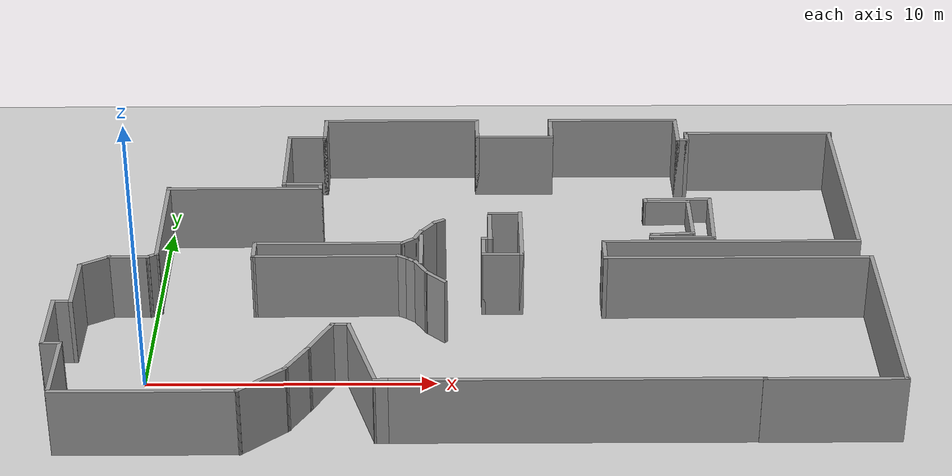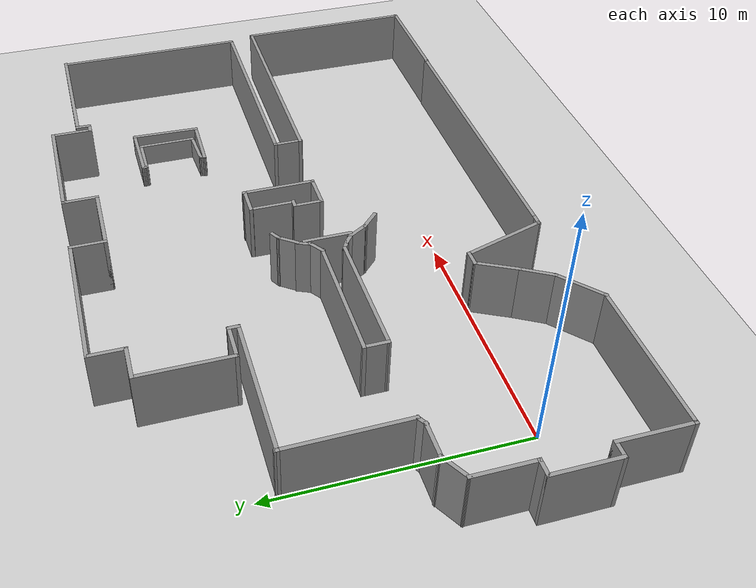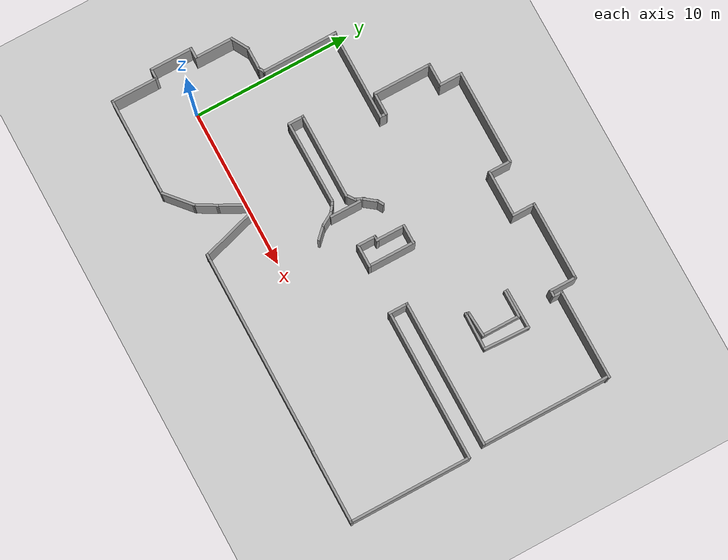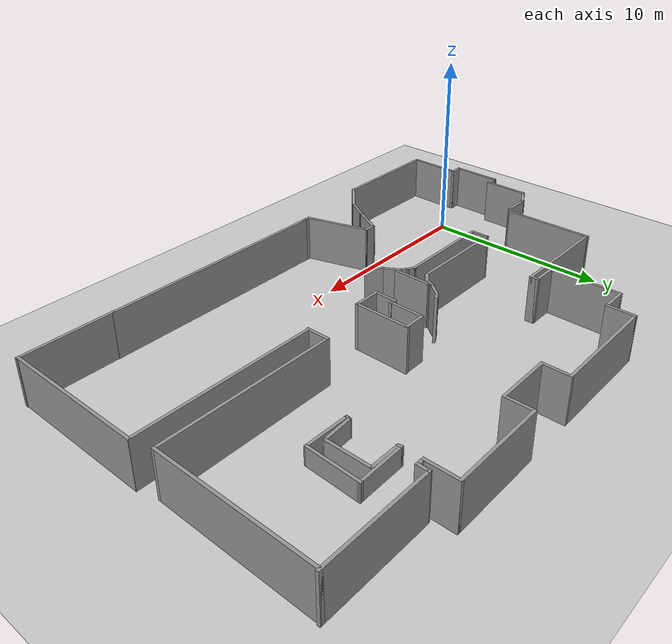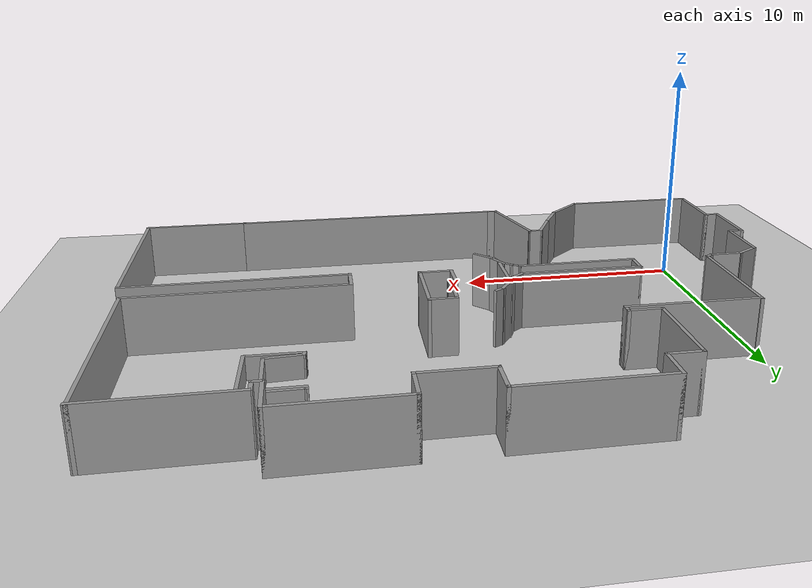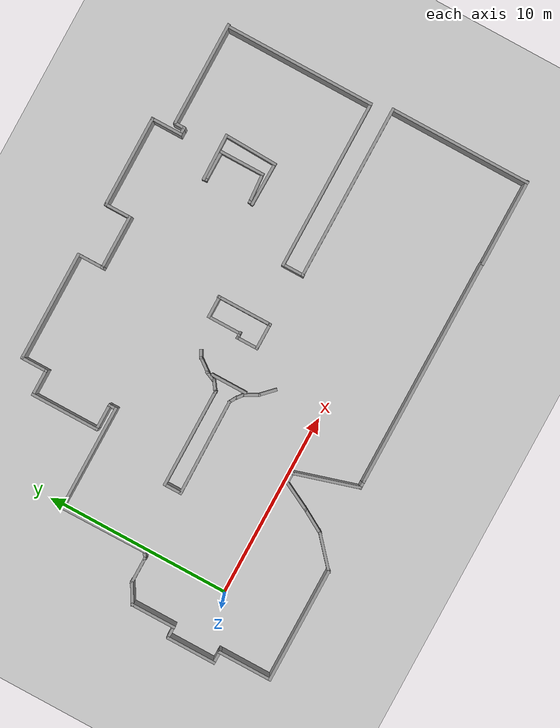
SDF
<sdf version="1.6">
 <world name="default">
  <model name="ground_plane">
   <static>1</static>
   <link name="link">
    <collision name="collision">
     <geometry><plane><normal>0 0 1</normal><size>100 100</size></plane></geometry>
     <surface>
      <contact><collide_bitmask>65535</collide_bitmask></contact>
      <friction><ode><mu>2e+06</mu><mu2>2e+06</mu2></ode></friction>
     </surface>
    </collision>
    <visual name="visual">
     <cast_shadows>0</cast_shadows>
     <geometry><plane><normal>0 0 1</normal><size>100 100</size></plane></geometry>
     <material>
      <script><uri>file://media/materials/scripts/gazebo.material</uri><name>Gazebo/Grey</name></script>
     </material>
    </visual>
   </link>
  </model>
  <light name="sun" type="directional">
   <pose>0 0 10 0 -0 0</pose>
   <diffuse>0.8 0.8 0.8 1</diffuse>
   <specular>0.2 0.2 0.2 1</specular>
   <attenuation>
    <range>1000</range>
    <constant>0.9</constant>
    <linear>0.01</linear>
    <quadratic>0.001</quadratic>
   </attenuation>
   <direction>-0.5 0.1 -0.9</direction>
  </light>
  <gravity>0 0 -9.8</gravity>
  <magnetic_field>6e-06 2.3e-05 -4.2e-05</magnetic_field>
  <atmosphere type="adiabatic"/>
  <physics name="default_physics" default="0" type="ode">
   <max_step_size>0.004</max_step_size>
   <real_time_factor>1</real_time_factor>
   <real_time_update_rate>250</real_time_update_rate>
  </physics>
  <scene><ambient>0.4 0.4 0.4 1</ambient><background>0.7 0.7 0.7 1</background><shadows>1</shadows></scene>
  <audio><device>default</device></audio>
  <spherical_coordinates>
   <surface_model>EARTH_WGS84</surface_model>
   <latitude_deg>0</latitude_deg>
   <longitude_deg>0</longitude_deg>
   <elevation>0</elevation>
   <heading_deg>0</heading_deg>
  </spherical_coordinates>
  <model name="showroomwall">
   <pose>11.0993 5.21478 0 0 -0 0</pose>
   <link name="Wall_0">
    <collision name="Wall_0_Collision">
     <geometry><box><size>6.25 0.15 2.5</size></box></geometry>
     <pose>0 0 1.25 0 -0 0</pose>
    </collision>
    <visual name="Wall_0_Visual">
     <pose>0 0 1.25 0 -0 0</pose>
     <geometry><box><size>6.25 0.15 2.5</size></box></geometry>
     <material>
      <script><uri>file://media/materials/scripts/gazebo.material</uri><name>Gazebo/Grey</name></script>
      <ambient>1 1 1 1</ambient>
     </material>
     <meta><layer>0</layer></meta>
    </visual>
    <pose>-10.5893 -9.22478 0 0 -0 0</pose>
   </link>
   <link name="Wall_1">
    <collision name="Wall_1_Collision">
     <geometry><box><size>2.12368 0.15 2.5</size></box></geometry>
     <pose>0 0 1.25 0 -0 0</pose>
    </collision>
    <visual name="Wall_1_Visual">
     <pose>0 0 1.25 0 -0 0</pose>
     <geometry><box><size>2.12368 0.15 2.5</size></box></geometry>
     <material>
      <script><uri>file://media/materials/scripts/gazebo.material</uri><name>Gazebo/Grey</name></script>
      <ambient>1 1 1 1</ambient>
     </material>
     <meta><layer>0</layer></meta>
    </visual>
    <pose>-6.79784 -8.58356 0 0 -0 0.720692</pose>
   </link>
   <link name="Wall_10">
    <collision name="Wall_10_Collision">
     <geometry><box><size>3 0.15 2.5</size></box></geometry>
     <pose>0 0 1.25 0 -0 0</pose>
    </collision>
    <visual name="Wall_10_Visual">
     <pose>0 0 1.25 0 -0 0</pose>
     <geometry><box><size>3 0.15 2.5</size></box></geometry>
     <material>
      <script><uri>file://media/materials/scripts/gazebo.material</uri><name>Gazebo/Grey</name></script>
      <ambient>1 1 1 1</ambient>
     </material>
     <meta><layer>0</layer></meta>
    </visual>
    <pose>-13.6393 -7.79978 0 0 -0 1.5708</pose>
   </link>
   <link name="Wall_11">
    <collision name="Wall_11_Collision">
     <geometry><box><size>0.75 0.15 2.5</size></box></geometry>
     <pose>0 0 1.25 0 -0 0</pose>
    </collision>
    <visual name="Wall_11_Visual">
     <pose>0 0 1.25 0 -0 0</pose>
     <geometry><box><size>0.75 0.15 2.5</size></box></geometry>
     <material>
      <script><uri>file://media/materials/scripts/gazebo.material</uri><name>Gazebo/Grey</name></script>
      <ambient>1 1 1 1</ambient>
     </material>
     <meta><layer>0</layer></meta>
    </visual>
    <pose>-13.9393 -6.37478 0 0 -0 3.14159</pose>
   </link>
   <link name="Wall_12">
    <collision name="Wall_12_Collision">
     <geometry><box><size>2.75 0.15 2.5</size></box></geometry>
     <pose>0 0 1.25 0 -0 0</pose>
    </collision>
    <visual name="Wall_12_Visual">
     <pose>0 0 1.25 0 -0 0</pose>
     <geometry><box><size>2.75 0.15 2.5</size></box></geometry>
     <material>
      <script><uri>file://media/materials/scripts/gazebo.material</uri><name>Gazebo/Grey</name></script>
      <ambient>1 1 1 1</ambient>
     </material>
     <meta><layer>0</layer></meta>
    </visual>
    <pose>-14.2393 -5.07478 0 0 -0 1.5708</pose>
   </link>
   <link name="Wall_14">
    <collision name="Wall_14_Collision">
     <geometry><box><size>0.75 0.15 2.5</size></box></geometry>
     <pose>0 0 1.25 0 -0 0</pose>
    </collision>
    <visual name="Wall_14_Visual">
     <pose>0 0 1.25 0 -0 0</pose>
     <geometry><box><size>0.75 0.15 2.5</size></box></geometry>
     <material>
      <script><uri>file://media/materials/scripts/gazebo.material</uri><name>Gazebo/Grey</name></script>
      <ambient>1 1 1 1</ambient>
     </material>
     <meta><layer>0</layer></meta>
    </visual>
    <pose>-13.9393 -3.77478 0 0 -0 0</pose>
   </link>
   <link name="Wall_15">
    <collision name="Wall_15_Collision">
     <geometry><box><size>2.5 0.15 2.5</size></box></geometry>
     <pose>0 0 1.25 0 -0 0</pose>
    </collision>
    <visual name="Wall_15_Visual">
     <pose>0 0 1.25 0 -0 0</pose>
     <geometry><box><size>2.5 0.15 2.5</size></box></geometry>
     <material>
      <script><uri>file://media/materials/scripts/gazebo.material</uri><name>Gazebo/Grey</name></script>
      <ambient>1 1 1 1</ambient>
     </material>
     <meta><layer>0</layer></meta>
    </visual>
    <pose>-13.6393 -2.59978 0 0 -0 1.5708</pose>
   </link>
   <link name="Wall_16">
    <collision name="Wall_16_Collision">
     <geometry><box><size>1.25 0.15 2.5</size></box></geometry>
     <pose>0 0 1.25 0 -0 0</pose>
    </collision>
    <visual name="Wall_16_Visual">
     <pose>0 0 1.25 0 -0 0</pose>
     <geometry><box><size>1.25 0.15 2.5</size></box></geometry>
     <material>
      <script><uri>file://media/materials/scripts/gazebo.material</uri><name>Gazebo/Grey</name></script>
      <ambient>1 1 1 1</ambient>
     </material>
     <meta><layer>0</layer></meta>
    </visual>
    <pose>-13.163 -1.14978 0 0 -0 0.523599</pose>
   </link>
   <link name="Wall_17">
    <collision name="Wall_17_Collision">
     <geometry><box><size>1.5 0.15 2.5</size></box></geometry>
     <pose>0 0 1.25 0 -0 0</pose>
    </collision>
    <visual name="Wall_17_Visual">
     <pose>0 0 1.25 0 -0 0</pose>
     <geometry><box><size>1.5 0.15 2.5</size></box></geometry>
     <material>
      <script><uri>file://media/materials/scripts/gazebo.material</uri><name>Gazebo/Grey</name></script>
      <ambient>1 1 1 1</ambient>
     </material>
     <meta><layer>0</layer></meta>
    </visual>
    <pose>-12.0117 -0.874777 0 0 -0 0</pose>
   </link>
   <link name="Wall_19">
    <collision name="Wall_19_Collision">
     <geometry><box><size>0.5 0.15 2.5</size></box></geometry>
     <pose>0 0 1.25 0 -0 0</pose>
    </collision>
    <visual name="Wall_19_Visual">
     <pose>0 0 1.25 0 -0 0</pose>
     <geometry><box><size>0.5 0.15 2.5</size></box></geometry>
     <material>
      <script><uri>file://media/materials/scripts/gazebo.material</uri><name>Gazebo/Grey</name></script>
      <ambient>1 1 1 1</ambient>
     </material>
     <meta><layer>0</layer></meta>
    </visual>
    <pose>-11.1851 -0.787278 0 0 -0 0.523599</pose>
   </link>
   <link name="Wall_2">
    <collision name="Wall_2_Collision">
     <geometry><box><size>1.5 0.15 2.5</size></box></geometry>
     <pose>0 0 1.25 0 -0 0</pose>
    </collision>
    <visual name="Wall_2_Visual">
     <pose>0 0 1.25 0 -0 0</pose>
     <geometry><box><size>1.5 0.15 2.5</size></box></geometry>
     <material>
      <script><uri>file://media/materials/scripts/gazebo.material</uri><name>Gazebo/Grey</name></script>
      <ambient>1 1 1 1</ambient>
     </material>
     <meta><layer>0</layer></meta>
    </visual>
    <pose>-5.71887 -7.34777 0 0 -0 1.0472</pose>
   </link>
   <link name="Wall_20">
    <collision name="Wall_20_Collision">
     <geometry><box><size>4.85603 0.15 2.5</size></box></geometry>
     <pose>0 0 1.25 0 -0 0</pose>
    </collision>
    <visual name="Wall_20_Visual">
     <pose>0 0 1.25 0 -0 0</pose>
     <geometry><box><size>4.85603 0.15 2.5</size></box></geometry>
     <material>
      <script><uri>file://media/materials/scripts/gazebo.material</uri><name>Gazebo/Grey</name></script>
      <ambient>1 1 1 1</ambient>
     </material>
     <meta><layer>0</layer></meta>
    </visual>
    <pose>-11.0538 1.65315 0 0 -0 1.57939</pose>
   </link>
   <link name="Wall_21">
    <collision name="Wall_21_Collision">
     <geometry><box><size>5.75 0.15 2.5</size></box></geometry>
     <pose>0 0 1.25 0 -0 0</pose>
    </collision>
    <visual name="Wall_21_Visual">
     <pose>0 0 1.25 0 -0 0</pose>
     <geometry><box><size>5.75 0.15 2.5</size></box></geometry>
     <material>
      <script><uri>file://media/materials/scripts/gazebo.material</uri><name>Gazebo/Grey</name></script>
      <ambient>1 1 1 1</ambient>
     </material>
     <meta><layer>0</layer></meta>
    </visual>
    <pose>-8.27402 3.96562 0 0 -0 0</pose>
   </link>
   <link name="Wall_23">
    <collision name="Wall_23_Collision">
     <geometry><box><size>0.5 0.15 2.5</size></box></geometry>
     <pose>0 0 1.25 0 -0 0</pose>
    </collision>
    <visual name="Wall_23_Visual">
     <pose>0 0 1.25 0 -0 0</pose>
     <geometry><box><size>0.5 0.15 2.5</size></box></geometry>
     <material>
      <script><uri>file://media/materials/scripts/gazebo.material</uri><name>Gazebo/Grey</name></script>
      <ambient>1 1 1 1</ambient>
     </material>
     <meta><layer>0</layer></meta>
    </visual>
    <pose>-5.47402 4.14062 0 0 -0 1.5708</pose>
   </link>
   <link name="Wall_24">
    <collision name="Wall_24_Collision">
     <geometry><box><size>1.5 0.15 2.5</size></box></geometry>
     <pose>0 0 1.25 0 -0 0</pose>
    </collision>
    <visual name="Wall_24_Visual">
     <pose>0 0 1.25 0 -0 0</pose>
     <geometry><box><size>1.5 0.15 2.5</size></box></geometry>
     <material>
      <script><uri>file://media/materials/scripts/gazebo.material</uri><name>Gazebo/Grey</name></script>
      <ambient>1 1 1 1</ambient>
     </material>
     <meta><layer>0</layer></meta>
    </visual>
    <pose>-6.14902 4.31562 0 0 -0 3.14159</pose>
   </link>
   <link name="Wall_25">
    <collision name="Wall_25_Collision">
     <geometry><box><size>3.75 0.15 2.5</size></box></geometry>
     <pose>0 0 1.25 0 -0 0</pose>
    </collision>
    <visual name="Wall_25_Visual">
     <pose>0 0 1.25 0 -0 0</pose>
     <geometry><box><size>3.75 0.15 2.5</size></box></geometry>
     <material>
      <script><uri>file://media/materials/scripts/gazebo.material</uri><name>Gazebo/Grey</name></script>
      <ambient>1 1 1 1</ambient>
     </material>
     <meta><layer>0</layer></meta>
    </visual>
    <pose>-6.82402 6.11562 0 0 -0 1.5708</pose>
   </link>
   <link name="Wall_26">
    <collision name="Wall_26_Collision">
     <geometry><box><size>1.5 0.15 2.5</size></box></geometry>
     <pose>0 0 1.25 0 -0 0</pose>
    </collision>
    <visual name="Wall_26_Visual">
     <pose>0 0 1.25 0 -0 0</pose>
     <geometry><box><size>1.5 0.15 2.5</size></box></geometry>
     <material>
      <script><uri>file://media/materials/scripts/gazebo.material</uri><name>Gazebo/Grey</name></script>
      <ambient>1 1 1 1</ambient>
     </material>
     <meta><layer>0</layer></meta>
    </visual>
    <pose>-6.14902 7.91562 0 0 -0 0</pose>
   </link>
   <link name="Wall_28">
    <collision name="Wall_28_Collision">
     <geometry><box><size>1.5 0.15 2.5</size></box></geometry>
     <pose>0 0 1.25 0 -0 0</pose>
    </collision>
    <visual name="Wall_28_Visual">
     <pose>0 0 1.25 0 -0 0</pose>
     <geometry><box><size>1.5 0.15 2.5</size></box></geometry>
     <material>
      <script><uri>file://media/materials/scripts/gazebo.material</uri><name>Gazebo/Grey</name></script>
      <ambient>1 1 1 1</ambient>
     </material>
     <meta><layer>0</layer></meta>
    </visual>
    <pose>-5.47402 8.59062 0 0 -0 1.5708</pose>
   </link>
   <link name="Wall_29">
    <collision name="Wall_29_Collision">
     <geometry><box><size>6 0.15 2.5</size></box></geometry>
     <pose>0 0 1.25 0 -0 0</pose>
    </collision>
    <visual name="Wall_29_Visual">
     <pose>0 0 1.25 0 -0 0</pose>
     <geometry><box><size>6 0.15 2.5</size></box></geometry>
     <material>
      <script><uri>file://media/materials/scripts/gazebo.material</uri><name>Gazebo/Grey</name></script>
      <ambient>1 1 1 1</ambient>
     </material>
     <meta><layer>0</layer></meta>
    </visual>
    <pose>-2.54902 9.26562 0 0 -0 0</pose>
   </link>
   <link name="Wall_3">
    <collision name="Wall_3_Collision">
     <geometry><box><size>1.79319 0.15 2.5</size></box></geometry>
     <pose>0 0 1.25 0 -0 0</pose>
    </collision>
    <visual name="Wall_3_Visual">
     <pose>0 0 1.25 0 -0 0</pose>
     <geometry><box><size>1.79319 0.15 2.5</size></box></geometry>
     <material>
      <script><uri>file://media/materials/scripts/gazebo.material</uri><name>Gazebo/Grey</name></script>
      <ambient>1 1 1 1</ambient>
     </material>
     <meta><layer>0</layer></meta>
    </visual>
    <pose>-5.00507 -6.03285 0 0 -0 1.09503</pose>
   </link>
   <link name="Wall_30">
    <collision name="Wall_30_Collision">
     <geometry><box><size>1.5 0.15 2.5</size></box></geometry>
     <pose>0 0 1.25 0 -0 0</pose>
    </collision>
    <visual name="Wall_30_Visual">
     <pose>0 0 1.25 0 -0 0</pose>
     <geometry><box><size>1.5 0.15 2.5</size></box></geometry>
     <material>
      <script><uri>file://media/materials/scripts/gazebo.material</uri><name>Gazebo/Grey</name></script>
      <ambient>1 1 1 1</ambient>
     </material>
     <meta><layer>0</layer></meta>
    </visual>
    <pose>0.375984 8.59062 0 0 -0 -1.5708</pose>
   </link>
   <link name="Wall_31">
    <collision name="Wall_31_Collision">
     <geometry><box><size>3 0.15 2.5</size></box></geometry>
     <pose>0 0 1.25 0 -0 0</pose>
    </collision>
    <visual name="Wall_31_Visual">
     <pose>0 0 1.25 0 -0 0</pose>
     <geometry><box><size>3 0.15 2.5</size></box></geometry>
     <material>
      <script><uri>file://media/materials/scripts/gazebo.material</uri><name>Gazebo/Grey</name></script>
      <ambient>1 1 1 1</ambient>
     </material>
     <meta><layer>0</layer></meta>
    </visual>
    <pose>1.80098 7.91562 0 0 -0 0</pose>
   </link>
   <link name="Wall_32">
    <collision name="Wall_32_Collision">
     <geometry><box><size>1.5 0.15 2.5</size></box></geometry>
     <pose>0 0 1.25 0 -0 0</pose>
    </collision>
    <visual name="Wall_32_Visual">
     <pose>0 0 1.25 0 -0 0</pose>
     <geometry><box><size>1.5 0.15 2.5</size></box></geometry>
     <material>
      <script><uri>file://media/materials/scripts/gazebo.material</uri><name>Gazebo/Grey</name></script>
      <ambient>1 1 1 1</ambient>
     </material>
     <meta><layer>0</layer></meta>
    </visual>
    <pose>3.22598 8.59062 0 0 -0 1.5708</pose>
   </link>
   <link name="Wall_33">
    <collision name="Wall_33_Collision">
     <geometry><box><size>5 0.15 2.5</size></box></geometry>
     <pose>0 0 1.25 0 -0 0</pose>
    </collision>
    <visual name="Wall_33_Visual">
     <pose>0 0 1.25 0 -0 0</pose>
     <geometry><box><size>5 0.15 2.5</size></box></geometry>
     <material>
      <script><uri>file://media/materials/scripts/gazebo.material</uri><name>Gazebo/Grey</name></script>
      <ambient>1 1 1 1</ambient>
     </material>
     <meta><layer>0</layer></meta>
    </visual>
    <pose>5.65098 9.26562 0 0 -0 0</pose>
   </link>
   <link name="Wall_34">
    <collision name="Wall_34_Collision">
     <geometry><box><size>1.75 0.15 2.5</size></box></geometry>
     <pose>0 0 1.25 0 -0 0</pose>
    </collision>
    <visual name="Wall_34_Visual">
     <pose>0 0 1.25 0 -0 0</pose>
     <geometry><box><size>1.75 0.15 2.5</size></box></geometry>
     <material>
      <script><uri>file://media/materials/scripts/gazebo.material</uri><name>Gazebo/Grey</name></script>
      <ambient>1 1 1 1</ambient>
     </material>
     <meta><layer>0</layer></meta>
    </visual>
    <pose>8.07598 8.46562 0 0 -0 -1.5708</pose>
   </link>
   <link name="Wall_36">
    <collision name="Wall_36_Collision">
     <geometry><box><size>0.5 0.15 2.5</size></box></geometry>
     <pose>0 0 1.25 0 -0 0</pose>
    </collision>
    <visual name="Wall_36_Visual">
     <pose>0 0 1.25 0 -0 0</pose>
     <geometry><box><size>0.5 0.15 2.5</size></box></geometry>
     <material>
      <script><uri>file://media/materials/scripts/gazebo.material</uri><name>Gazebo/Grey</name></script>
      <ambient>1 1 1 1</ambient>
     </material>
     <meta><layer>0</layer></meta>
    </visual>
    <pose>8.25098 7.66562 0 0 -0 0</pose>
   </link>
   <link name="Wall_37">
    <collision name="Wall_37_Collision">
     <geometry><box><size>0.660508 0.15 2.5</size></box></geometry>
     <pose>0 0 1.25 0 -0 0</pose>
    </collision>
    <visual name="Wall_37_Visual">
     <pose>0 0 1.25 0 -0 0</pose>
     <geometry><box><size>0.660508 0.15 2.5</size></box></geometry>
     <material>
      <script><uri>file://media/materials/scripts/gazebo.material</uri><name>Gazebo/Grey</name></script>
      <ambient>1 1 1 1</ambient>
     </material>
     <meta><layer>0</layer></meta>
    </visual>
    <pose>8.42599 7.92087 0 0 -0 1.5708</pose>
   </link>
   <link name="Wall_38">
    <collision name="Wall_38_Collision">
     <geometry><box><size>5.64686 0.15 2.5</size></box></geometry>
     <pose>0 0 1.25 0 -0 0</pose>
    </collision>
    <visual name="Wall_38_Visual">
     <pose>0 0 1.25 0 -0 0</pose>
     <geometry><box><size>5.64686 0.15 2.5</size></box></geometry>
     <material>
      <script><uri>file://media/materials/scripts/gazebo.material</uri><name>Gazebo/Grey</name></script>
      <ambient>1 1 1 1</ambient>
     </material>
     <meta><layer>0</layer></meta>
    </visual>
    <pose>11.2279 8.17613 0 0 -0 0</pose>
   </link>
   <link name="Wall_39">
    <collision name="Wall_39_Collision">
     <geometry><box><size>8.25 0.15 2.5</size></box></geometry>
     <pose>0 0 1.25 0 -0 0</pose>
    </collision>
    <visual name="Wall_39_Visual">
     <pose>0 0 1.25 0 -0 0</pose>
     <geometry><box><size>8.25 0.15 2.5</size></box></geometry>
     <material>
      <script><uri>file://media/materials/scripts/gazebo.material</uri><name>Gazebo/Grey</name></script>
      <ambient>1 1 1 1</ambient>
     </material>
     <meta><layer>0</layer></meta>
    </visual>
    <pose>13.9228 4.12613 0 0 -0 -1.5708</pose>
   </link>
   <link name="Wall_4">
    <collision name="Wall_4_Collision">
     <geometry><box><size>0.7 0.15 2.5</size></box></geometry>
     <pose>0 0 1.25 0 -0 0</pose>
    </collision>
    <visual name="Wall_4_Visual">
     <pose>0 0 1.25 0 -0 0</pose>
     <geometry><box><size>0.7 0.15 2.5</size></box></geometry>
     <material>
      <script><uri>file://media/materials/scripts/gazebo.material</uri><name>Gazebo/Grey</name></script>
      <ambient>1 1 1 1</ambient>
     </material>
     <meta><layer>0</layer></meta>
    </visual>
    <pose>-4.35376 -5.3025 0 0 -0 0</pose>
   </link>
   <link name="Wall_41">
    <collision name="Wall_41_Collision">
     <geometry><box><size>9.25 0.15 2.5</size></box></geometry>
     <pose>0 0 1.25 0 -0 0</pose>
    </collision>
    <visual name="Wall_41_Visual">
     <pose>0 0 1.25 0 -0 0</pose>
     <geometry><box><size>9.25 0.15 2.5</size></box></geometry>
     <material>
      <script><uri>file://media/materials/scripts/gazebo.material</uri><name>Gazebo/Grey</name></script>
      <ambient>1 1 1 1</ambient>
     </material>
     <meta><layer>0</layer></meta>
    </visual>
    <pose>9.37284 0.076129 0 0 -0 3.14159</pose>
   </link>
   <link name="Wall_42">
    <collision name="Wall_42_Collision">
     <geometry><box><size>1.276 0.15 2.5</size></box></geometry>
     <pose>0 0 1.25 0 -0 0</pose>
    </collision>
    <visual name="Wall_42_Visual">
     <pose>0 0 1.25 0 -0 0</pose>
     <geometry><box><size>1.276 0.15 2.5</size></box></geometry>
     <material>
      <script><uri>file://media/materials/scripts/gazebo.material</uri><name>Gazebo/Grey</name></script>
      <ambient>1 1 1 1</ambient>
     </material>
     <meta><layer>0</layer></meta>
    </visual>
    <pose>4.82284 -0.486871 0 0 -0 -1.5708</pose>
   </link>
   <link name="Wall_43">
    <collision name="Wall_43_Collision">
     <geometry><box><size>9.53587 0.15 2.5</size></box></geometry>
     <pose>0 0 1.25 0 -0 0</pose>
    </collision>
    <visual name="Wall_43_Visual">
     <pose>0 0 1.25 0 -0 0</pose>
     <geometry><box><size>9.53587 0.15 2.5</size></box></geometry>
     <material>
      <script><uri>file://media/materials/scripts/gazebo.material</uri><name>Gazebo/Grey</name></script>
      <ambient>1 1 1 1</ambient>
     </material>
     <meta><layer>0</layer></meta>
    </visual>
    <pose>9.51577 -1.02687 0 0 -0 0</pose>
   </link>
   <link name="Wall_45">
    <collision name="Wall_45_Collision">
     <geometry><box><size>7.73456 0.15 2.5</size></box></geometry>
     <pose>0 0 1.25 0 -0 0</pose>
    </collision>
    <visual name="Wall_45_Visual">
     <pose>0 0 1.25 0 -0 0</pose>
     <geometry><box><size>7.73456 0.15 2.5</size></box></geometry>
     <material>
      <script><uri>file://media/materials/scripts/gazebo.material</uri><name>Gazebo/Grey</name></script>
      <ambient>1 1 1 1</ambient>
     </material>
     <meta><layer>0</layer></meta>
    </visual>
    <pose>14.2087 -4.84215 0 0 -0 -1.5708</pose>
   </link>
   <link name="Wall_46">
    <collision name="Wall_46_Collision">
     <geometry><box><size>4.78587 0.15 2.5</size></box></geometry>
     <pose>0 0 1.25 0 -0 0</pose>
    </collision>
    <visual name="Wall_46_Visual">
     <pose>0 0 1.25 0 -0 0</pose>
     <geometry><box><size>4.78587 0.15 2.5</size></box></geometry>
     <material>
      <script><uri>file://media/materials/scripts/gazebo.material</uri><name>Gazebo/Grey</name></script>
      <ambient>1 1 1 1</ambient>
     </material>
     <meta><layer>0</layer></meta>
    </visual>
    <pose>11.9214 -8.63443 0 0 -0 3.14159</pose>
   </link>
   <link name="Wall_48">
    <collision name="Wall_48_Collision">
     <geometry><box><size>5.40227 0.15 2.5</size></box></geometry>
     <pose>0 0 1.25 0 -0 0</pose>
    </collision>
    <visual name="Wall_48_Visual">
     <pose>0 0 1.25 0 -0 0</pose>
     <geometry><box><size>5.40227 0.15 2.5</size></box></geometry>
     <material>
      <script><uri>file://media/materials/scripts/gazebo.material</uri><name>Gazebo/Grey</name></script>
      <ambient>1 1 1 1</ambient>
     </material>
     <meta><layer>0</layer></meta>
    </visual>
    <pose>-4.98617 0.015238 0 0 -0 6e-06</pose>
   </link>
   <link name="Wall_49">
    <collision name="Wall_49_Collision">
     <geometry><box><size>0.744581 0.15 2.5</size></box></geometry>
     <pose>0 0 1.25 0 -0 0</pose>
    </collision>
    <visual name="Wall_49_Visual">
     <pose>0 0 1.25 0 -0 0</pose>
     <geometry><box><size>0.744581 0.15 2.5</size></box></geometry>
     <material>
      <script><uri>file://media/materials/scripts/gazebo.material</uri><name>Gazebo/Grey</name></script>
      <ambient>1 1 1 1</ambient>
     </material>
     <meta><layer>0</layer></meta>
    </visual>
    <pose>-2.13713 0.186475 0 0 -0 0.613754</pose>
   </link>
   <link name="Wall_5">
    <collision name="Wall_5_Collision">
     <geometry><box><size>3.60609 0.15 2.5</size></box></geometry>
     <pose>0 0 1.25 0 -0 0</pose>
    </collision>
    <visual name="Wall_5_Visual">
     <pose>0 0 1.25 0 -0 0</pose>
     <geometry><box><size>3.60609 0.15 2.5</size></box></geometry>
     <material>
      <script><uri>file://media/materials/scripts/gazebo.material</uri><name>Gazebo/Grey</name></script>
      <ambient>1 1 1 1</ambient>
     </material>
     <meta><layer>0</layer></meta>
    </visual>
    <pose>-3.58916 -6.95973 0 0 -0 -1.28354</pose>
   </link>
   <link name="Wall_50">
    <collision name="Wall_50_Collision">
     <geometry><box><size>0.647103 0.15 2.5</size></box></geometry>
     <pose>0 0 1.25 0 -0 0</pose>
    </collision>
    <visual name="Wall_50_Visual">
     <pose>0 0 1.25 0 -0 0</pose>
     <geometry><box><size>0.647103 0.15 2.5</size></box></geometry>
     <material>
      <script><uri>file://media/materials/scripts/gazebo.material</uri><name>Gazebo/Grey</name></script>
      <ambient>1 1 1 1</ambient>
     </material>
     <meta><layer>0</layer></meta>
    </visual>
    <pose>-1.81096 0.602462 0 0 -0 1.15402</pose>
   </link>
   <link name="Wall_51">
    <collision name="Wall_51_Collision">
     <geometry><box><size>0.932715 0.15 2.5</size></box></geometry>
     <pose>0 0 1.25 0 -0 0</pose>
    </collision>
    <visual name="Wall_51_Visual">
     <pose>0 0 1.25 0 -0 0</pose>
     <geometry><box><size>0.932715 0.15 2.5</size></box></geometry>
     <material>
      <script><uri>file://media/materials/scripts/gazebo.material</uri><name>Gazebo/Grey</name></script>
      <ambient>1 1 1 1</ambient>
     </material>
     <meta><layer>0</layer></meta>
    </visual>
    <pose>-1.45754 1.12495 0 0 -0 0.925686</pose>
   </link>
   <link name="Wall_52">
    <collision name="Wall_52_Collision">
     <geometry><box><size>0.5 0.15 2.5</size></box></geometry>
     <pose>0 0 1.25 0 -0 0</pose>
    </collision>
    <visual name="Wall_52_Visual">
     <pose>0 0 1.25 0 -0 0</pose>
     <geometry><box><size>0.5 0.15 2.5</size></box></geometry>
     <material>
      <script><uri>file://media/materials/scripts/gazebo.material</uri><name>Gazebo/Grey</name></script>
      <ambient>1 1 1 1</ambient>
     </material>
     <meta><layer>0</layer></meta>
    </visual>
    <pose>-1.07067 1.53839 0 0 -0 0.523599</pose>
   </link>
   <link name="Wall_58">
    <collision name="Wall_58_Collision">
     <geometry><box><size>2 0.15 2.5</size></box></geometry>
     <pose>0 0 1.25 0 -0 0</pose>
    </collision>
    <visual name="Wall_58_Visual">
     <pose>0 0 1.25 0 -0 0</pose>
     <geometry><box><size>2 0.15 2.5</size></box></geometry>
     <material>
      <script><uri>file://media/materials/scripts/gazebo.material</uri><name>Gazebo/Grey</name></script>
      <ambient>1 1 1 1</ambient>
     </material>
     <meta><layer>0</layer></meta>
    </visual>
    <pose>-1.6912 -0.38542 0 0 -0 -1.5708</pose>
   </link>
   <link name="Wall_6">
    <collision name="Wall_6_Collision">
     <geometry><box><size>0.5 0.15 2.5</size></box></geometry>
     <pose>0 0 1.25 0 -0 0</pose>
    </collision>
    <visual name="Wall_6_Visual">
     <pose>0 0 1.25 0 -0 0</pose>
     <geometry><box><size>0.5 0.15 2.5</size></box></geometry>
     <material>
      <script><uri>file://media/materials/scripts/gazebo.material</uri><name>Gazebo/Grey</name></script>
      <ambient>1 1 1 1</ambient>
     </material>
     <meta><layer>0</layer></meta>
    </visual>
    <pose>-2.92456 -8.61697 0 0 -0 0</pose>
   </link>
   <link name="Wall_60">
    <collision name="Wall_60_Collision">
     <geometry><box><size>1.05 0.15 2.5</size></box></geometry>
     <pose>0 0 1.25 0 -0 0</pose>
    </collision>
    <visual name="Wall_60_Visual">
     <pose>0 0 1.25 0 -0 0</pose>
     <geometry><box><size>1.05 0.15 2.5</size></box></geometry>
     <material>
      <script><uri>file://media/materials/scripts/gazebo.material</uri><name>Gazebo/Grey</name></script>
      <ambient>1 1 1 1</ambient>
     </material>
     <meta><layer>0</layer></meta>
    </visual>
    <pose>-7.6123 -0.434777 0 0 -0 -1.5708</pose>
   </link>
   <link name="Wall_61">
    <collision name="Wall_61_Collision">
     <geometry><box><size>5.26938 0.15 2.5</size></box></geometry>
     <pose>0 0 1.25 0 -0 0</pose>
    </collision>
    <visual name="Wall_61_Visual">
     <pose>0 0 1.25 0 -0 0</pose>
     <geometry><box><size>5.26938 0.15 2.5</size></box></geometry>
     <material>
      <script><uri>file://media/materials/scripts/gazebo.material</uri><name>Gazebo/Grey</name></script>
      <ambient>1 1 1 1</ambient>
     </material>
     <meta><layer>0</layer></meta>
    </visual>
    <pose>-5.05261 -0.864812 0 0 -0 0.0078</pose>
   </link>
   <link name="Wall_62">
    <collision name="Wall_62_Collision">
     <geometry><box><size>0.5 0.15 2.5</size></box></geometry>
     <pose>0 0 1.25 0 -0 0</pose>
    </collision>
    <visual name="Wall_62_Visual">
     <pose>0 0 1.25 0 -0 0</pose>
     <geometry><box><size>0.5 0.15 2.5</size></box></geometry>
     <material>
      <script><uri>file://media/materials/scripts/gazebo.material</uri><name>Gazebo/Grey</name></script>
      <ambient>1 1 1 1</ambient>
     </material>
     <meta><layer>0</layer></meta>
    </visual>
    <pose>-2.32986 -0.932348 0 0 -0 -0.523599</pose>
   </link>
   <link name="Wall_63">
    <collision name="Wall_63_Collision">
     <geometry><box><size>0.520596 0.15 2.5</size></box></geometry>
     <pose>0 0 1.25 0 -0 0</pose>
    </collision>
    <visual name="Wall_63_Visual">
     <pose>0 0 1.25 0 -0 0</pose>
     <geometry><box><size>0.520596 0.15 2.5</size></box></geometry>
     <material>
      <script><uri>file://media/materials/scripts/gazebo.material</uri><name>Gazebo/Grey</name></script>
      <ambient>1 1 1 1</ambient>
     </material>
     <meta><layer>0</layer></meta>
    </visual>
    <pose>-2.03473 -1.13698 0 0 -0 -0.684291</pose>
   </link>
   <link name="Wall_64">
    <collision name="Wall_64_Collision">
     <geometry><box><size>1 0.15 2.5</size></box></geometry>
     <pose>0 0 1.25 0 -0 0</pose>
    </collision>
    <visual name="Wall_64_Visual">
     <pose>0 0 1.25 0 -0 0</pose>
     <geometry><box><size>1 0.15 2.5</size></box></geometry>
     <material>
      <script><uri>file://media/materials/scripts/gazebo.material</uri><name>Gazebo/Grey</name></script>
      <ambient>1 1 1 1</ambient>
     </material>
     <meta><layer>0</layer></meta>
    </visual>
    <pose>-1.66542 -1.60895 0 0 -0 -1.0472</pose>
   </link>
   <link name="Wall_66">
    <collision name="Wall_66_Collision">
     <geometry><box><size>1 0.15 2.5</size></box></geometry>
     <pose>0 0 1.25 0 -0 0</pose>
    </collision>
    <visual name="Wall_66_Visual">
     <pose>0 0 1.25 0 -0 0</pose>
     <geometry><box><size>1 0.15 2.5</size></box></geometry>
     <material>
      <script><uri>file://media/materials/scripts/gazebo.material</uri><name>Gazebo/Grey</name></script>
      <ambient>1 1 1 1</ambient>
     </material>
     <meta><layer>0</layer></meta>
    </visual>
    <pose>-1.1524 -2.27753 0 0 -0 -0.785398</pose>
   </link>
   <link name="Wall_68">
    <collision name="Wall_68_Collision">
     <geometry><box><size>2.60112 0.15 1</size></box></geometry>
     <pose>0 0 0.5 0 -0 0</pose>
    </collision>
    <visual name="Wall_68_Visual">
     <pose>0 0 0.5 0 -0 0</pose>
     <geometry><box><size>2.60112 0.15 1</size></box></geometry>
     <material>
      <script><uri>file://media/materials/scripts/gazebo.material</uri><name>Gazebo/Grey</name></script>
      <ambient>1 1 1 1</ambient>
     </material>
     <meta><layer>0</layer></meta>
    </visual>
    <pose>7.9592 5.68072 0 0 -0 0.016726</pose>
   </link>
   <link name="Wall_69">
    <collision name="Wall_69_Collision">
     <geometry><box><size>2.97331 0.15 1</size></box></geometry>
     <pose>0 0 0.5 0 -0 0</pose>
    </collision>
    <visual name="Wall_69_Visual">
     <pose>0 0 0.5 0 -0 0</pose>
     <geometry><box><size>2.97331 0.15 1</size></box></geometry>
     <material>
      <script><uri>file://media/materials/scripts/gazebo.material</uri><name>Gazebo/Grey</name></script>
      <ambient>1 1 1 1</ambient>
     </material>
     <meta><layer>0</layer></meta>
    </visual>
    <pose>9.1362 4.29022 0 0 -0 -1.60516</pose>
   </link>
   <link name="Wall_7">
    <collision name="Wall_7_Collision">
     <geometry><box><size>12.5 0.15 2.5</size></box></geometry>
     <pose>0 0 1.25 0 -0 0</pose>
    </collision>
    <visual name="Wall_7_Visual">
     <pose>0 0 1.25 0 -0 0</pose>
     <geometry><box><size>12.5 0.15 2.5</size></box></geometry>
     <material>
      <script><uri>file://media/materials/scripts/gazebo.material</uri><name>Gazebo/Grey</name></script>
      <ambient>1 1 1 1</ambient>
     </material>
     <meta><layer>0</layer></meta>
    </visual>
    <pose>3.42543 -8.61697 0 0 -0 0</pose>
   </link>
   <link name="Wall_70">
    <collision name="Wall_70_Collision">
     <geometry><box><size>2.45125 0.15 1</size></box></geometry>
     <pose>0 0 0.5 0 -0 0</pose>
    </collision>
    <visual name="Wall_70_Visual">
     <pose>0 0 0.5 0 -0 0</pose>
     <geometry><box><size>2.45125 0.15 1</size></box></geometry>
     <material>
      <script><uri>file://media/materials/scripts/gazebo.material</uri><name>Gazebo/Grey</name></script>
      <ambient>1 1 1 1</ambient>
     </material>
     <meta><layer>0</layer></meta>
    </visual>
    <pose>7.9372 2.89622 0 0 -0 3.12682</pose>
   </link>
   <link name="Wall_71">
    <collision name="Wall_71_Collision">
     <geometry><box><size>0.313342 0.15 1</size></box></geometry>
     <pose>0 0 0.5 0 -0 0</pose>
    </collision>
    <visual name="Wall_71_Visual">
     <pose>0 0 0.5 0 -0 0</pose>
     <geometry><box><size>0.313342 0.15 1</size></box></geometry>
     <material>
      <script><uri>file://media/materials/scripts/gazebo.material</uri><name>Gazebo/Grey</name></script>
      <ambient>1 1 1 1</ambient>
     </material>
     <meta><layer>0</layer></meta>
    </visual>
    <pose>6.8017 2.99372 0 0 -0 1.38657</pose>
   </link>
   <link name="Wall_75">
    <collision name="Wall_75_Collision">
     <geometry><box><size>0.282819 0.15 1</size></box></geometry>
     <pose>0 0 0.5 0 -0 0</pose>
    </collision>
    <visual name="Wall_75_Visual">
     <pose>0 0 0.5 0 -0 0</pose>
     <geometry><box><size>0.282819 0.15 1</size></box></geometry>
     <material>
      <script><uri>file://media/materials/scripts/gazebo.material</uri><name>Gazebo/Grey</name></script>
      <ambient>1 1 1 1</ambient>
     </material>
     <meta><layer>0</layer></meta>
    </visual>
    <pose>6.7402 5.59422 0 0 -0 1.66897</pose>
   </link>
   <link name="Wall_77">
    <collision name="Wall_77_Collision">
     <geometry><box><size>1.75 0.15 1</size></box></geometry>
     <pose>0 0 0.5 0 -0 0</pose>
    </collision>
    <visual name="Wall_77_Visual">
     <pose>0 0 0.5 0 -0 0</pose>
     <geometry><box><size>1.75 0.15 1</size></box></geometry>
     <material>
      <script><uri>file://media/materials/scripts/gazebo.material</uri><name>Gazebo/Grey</name></script>
      <ambient>1 1 1 1</ambient>
     </material>
     <meta><layer>0</layer></meta>
    </visual>
    <pose>7.5467 5.52822 0 0 -0 0</pose>
   </link>
   <link name="Wall_78">
    <collision name="Wall_78_Collision">
     <geometry><box><size>2.5 0.15 1</size></box></geometry>
     <pose>0 0 0.5 0 -0 0</pose>
    </collision>
    <visual name="Wall_78_Visual">
     <pose>0 0 0.5 0 -0 0</pose>
     <geometry><box><size>2.5 0.15 1</size></box></geometry>
     <material>
      <script><uri>file://media/materials/scripts/gazebo.material</uri><name>Gazebo/Grey</name></script>
      <ambient>1 1 1 1</ambient>
     </material>
     <meta><layer>0</layer></meta>
    </visual>
    <pose>8.3467 4.35322 0 0 -0 -1.5708</pose>
   </link>
   <link name="Wall_79">
    <collision name="Wall_79_Collision">
     <geometry><box><size>1.68353 0.15 1</size></box></geometry>
     <pose>0 0 0.5 0 -0 0</pose>
    </collision>
    <visual name="Wall_79_Visual">
     <pose>0 0 0.5 0 -0 0</pose>
     <geometry><box><size>1.68353 0.15 1</size></box></geometry>
     <material>
      <script><uri>file://media/materials/scripts/gazebo.material</uri><name>Gazebo/Grey</name></script>
      <ambient>1 1 1 1</ambient>
     </material>
     <meta><layer>0</layer></meta>
    </visual>
    <pose>7.5817 3.12622 0 0 -0 -3.07372</pose>
   </link>
   <link name="Wall_81">
    <collision name="Wall_81_Collision">
     <geometry><box><size>1.25 0.15 2.5</size></box></geometry>
     <pose>0 0 1.25 0 -0 0</pose>
    </collision>
    <visual name="Wall_81_Visual">
     <pose>0 0 1.25 0 -0 0</pose>
     <geometry><box><size>1.25 0.15 2.5</size></box></geometry>
     <material>
      <script><uri>file://media/materials/scripts/gazebo.material</uri><name>Gazebo/Grey</name></script>
      <ambient>1 1 1 1</ambient>
     </material>
     <meta><layer>0</layer></meta>
    </visual>
    <pose>1.32997 2.08864 0 0 -0 0</pose>
   </link>
   <link name="Wall_82">
    <collision name="Wall_82_Collision">
     <geometry><box><size>3.04012 0.15 2.5</size></box></geometry>
     <pose>0 0 1.25 0 -0 0</pose>
    </collision>
    <visual name="Wall_82_Visual">
     <pose>0 0 1.25 0 -0 0</pose>
     <geometry><box><size>3.04012 0.15 2.5</size></box></geometry>
     <material>
      <script><uri>file://media/materials/scripts/gazebo.material</uri><name>Gazebo/Grey</name></script>
      <ambient>1 1 1 1</ambient>
     </material>
     <meta><layer>0</layer></meta>
    </visual>
    <pose>1.87997 0.678559 0 0 -0 -1.5708</pose>
   </link>
   <link name="Wall_83">
    <collision name="Wall_83_Collision">
     <geometry><box><size>1.5 0.15 2.5</size></box></geometry>
     <pose>0 0 1.25 0 -0 0</pose>
    </collision>
    <visual name="Wall_83_Visual">
     <pose>0 0 1.25 0 -0 0</pose>
     <geometry><box><size>1.5 0.15 2.5</size></box></geometry>
     <material>
      <script><uri>file://media/materials/scripts/gazebo.material</uri><name>Gazebo/Grey</name></script>
      <ambient>1 1 1 1</ambient>
     </material>
     <meta><layer>0</layer></meta>
    </visual>
    <pose>1.20497 -0.7665 0 0 -0 3.14159</pose>
   </link>
   <link name="Wall_84">
    <collision name="Wall_84_Collision">
     <geometry><box><size>1.25 0.15 2.5</size></box></geometry>
     <pose>0 0 1.25 0 -0 0</pose>
    </collision>
    <visual name="Wall_84_Visual">
     <pose>0 0 1.25 0 -0 0</pose>
     <geometry><box><size>1.25 0.15 2.5</size></box></geometry>
     <material>
      <script><uri>file://media/materials/scripts/gazebo.material</uri><name>Gazebo/Grey</name></script>
      <ambient>1 1 1 1</ambient>
     </material>
     <meta><layer>0</layer></meta>
    </visual>
    <pose>0.529972 -0.216501 0 0 -0 1.5708</pose>
   </link>
   <link name="Wall_85">
    <collision name="Wall_85_Collision">
     <geometry><box><size>0.424901 0.15 2.5</size></box></geometry>
     <pose>0 0 1.25 0 -0 0</pose>
    </collision>
    <visual name="Wall_85_Visual">
     <pose>0 0 1.25 0 -0 0</pose>
     <geometry><box><size>0.424901 0.15 2.5</size></box></geometry>
     <material>
      <script><uri>file://media/materials/scripts/gazebo.material</uri><name>Gazebo/Grey</name></script>
      <ambient>1 1 1 1</ambient>
     </material>
     <meta><layer>0</layer></meta>
    </visual>
    <pose>0.667422 0.333499 0 0 -0 0</pose>
   </link>
   <link name="Wall_86">
    <collision name="Wall_86_Collision">
     <geometry><box><size>1.75 0.15 2.5</size></box></geometry>
     <pose>0 0 1.25 0 -0 0</pose>
    </collision>
    <visual name="Wall_86_Visual">
     <pose>0 0 1.25 0 -0 0</pose>
     <geometry><box><size>1.75 0.15 2.5</size></box></geometry>
     <material>
      <script><uri>file://media/materials/scripts/gazebo.material</uri><name>Gazebo/Grey</name></script>
      <ambient>1 1 1 1</ambient>
     </material>
     <meta><layer>0</layer></meta>
    </visual>
    <pose>0.769892 1.1335 0 0 -0 1.5708</pose>
   </link>
   <static>1</static>
  </model>
 </world>
</sdf>
